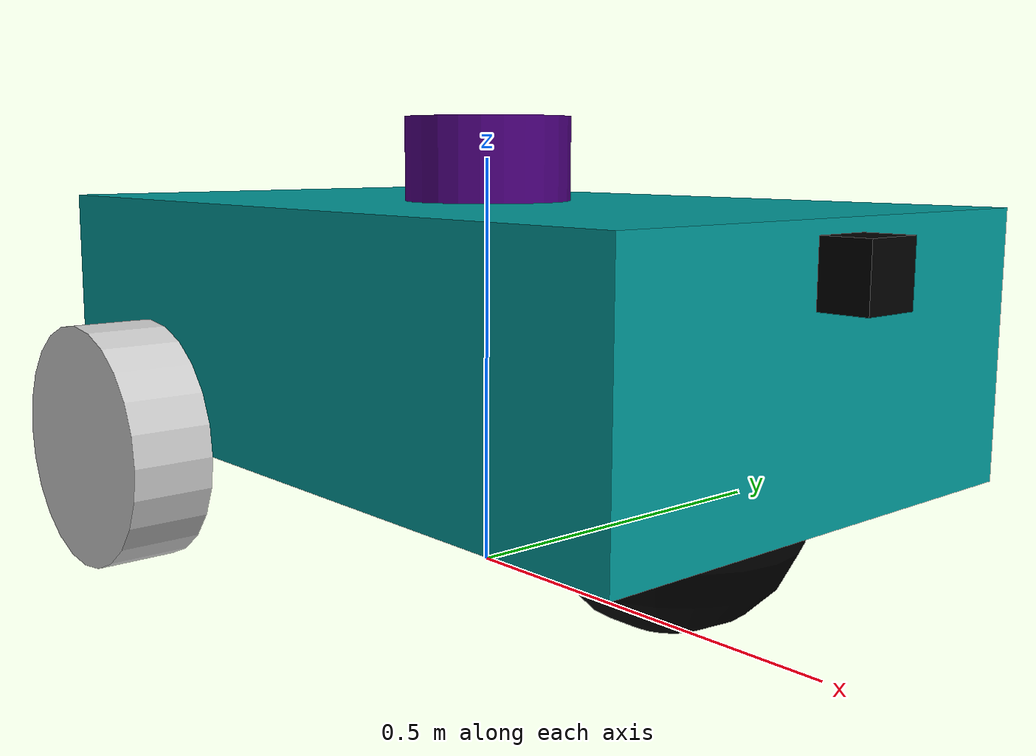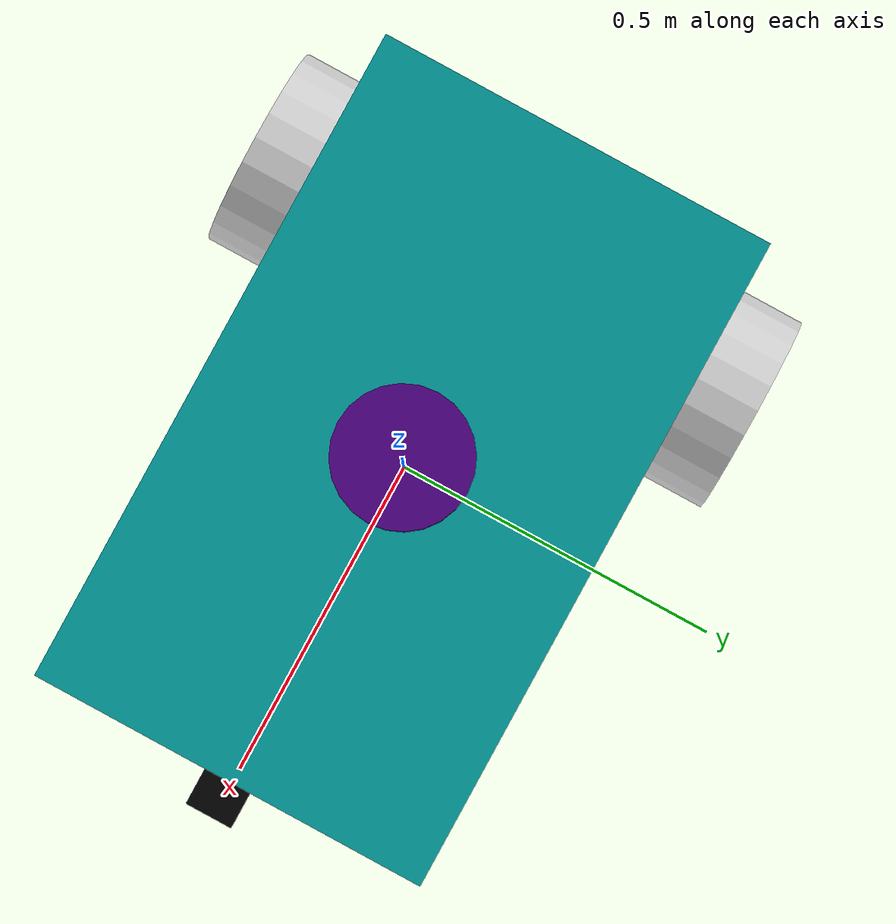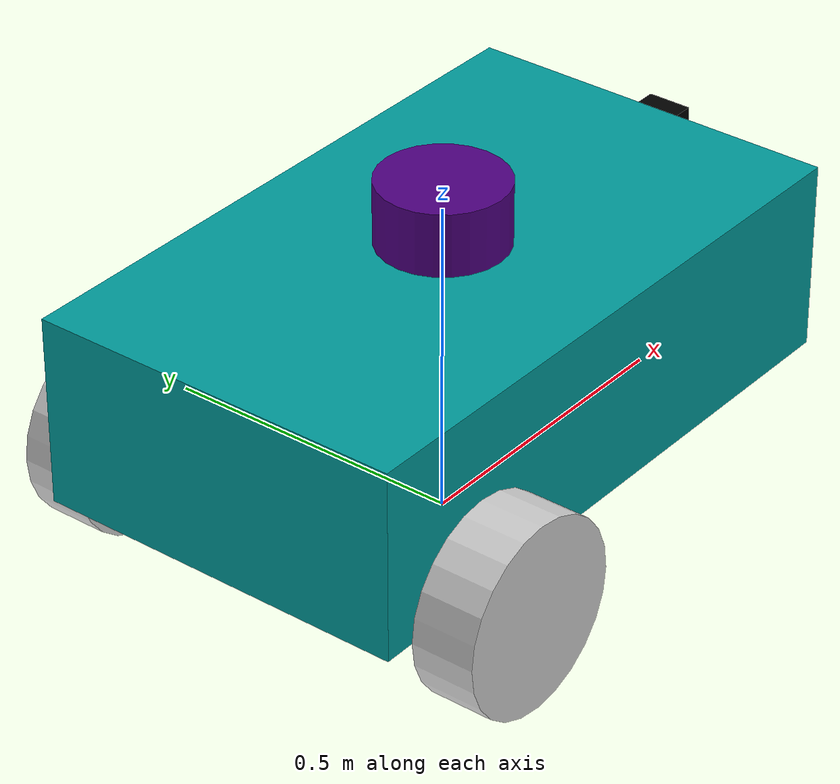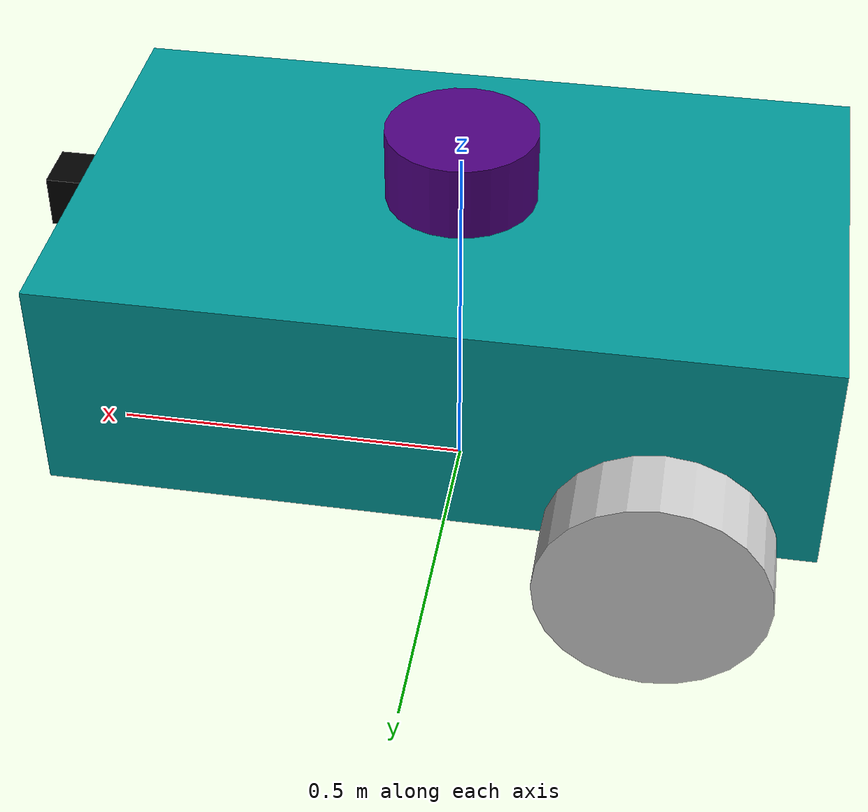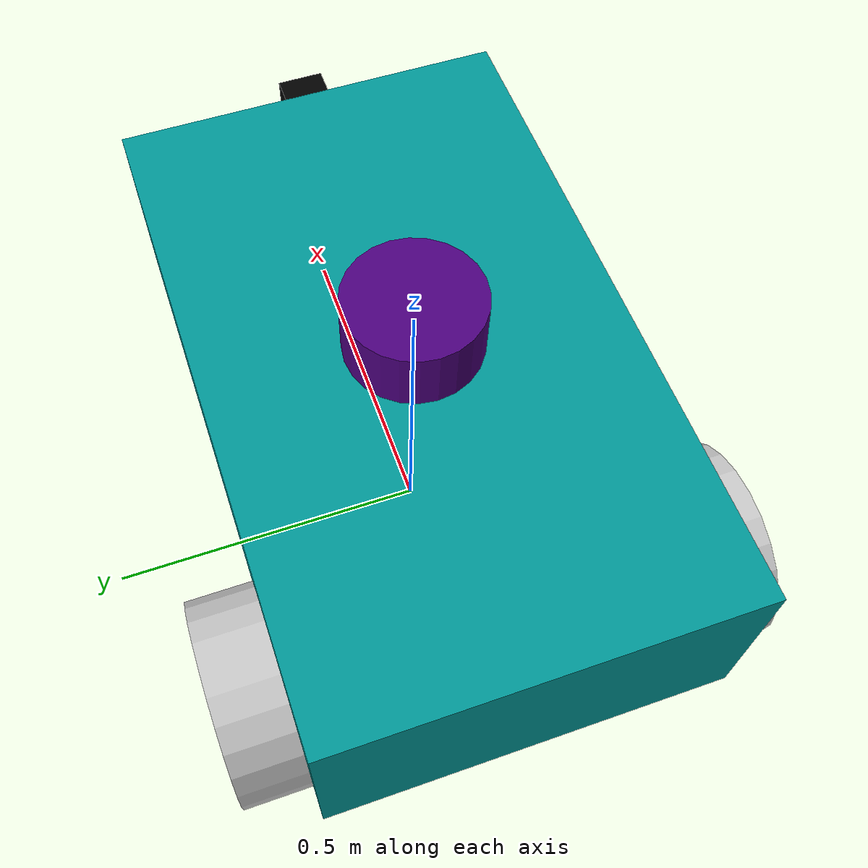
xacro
<?xml version="1.0"?>
<robot name="differential_drive_robot" xmlns:xacro="http://www.ros.org/wiki/xacro">

  <!-- Mathematical constant -->
  <xacro:property name="pi_const" value="3.14159265"/>

  <!-- Robot body dimensions -->
  <!-- Length of robot chassis (X axis) -->
  <xacro:property name="chassis_length" value="1.0"/>

  <!-- Height of robot chassis (Z axis) -->
  <xacro:property name="chassis_height" value="0.3"/>

  <!-- Width of robot chassis (Y axis) -->
  <xacro:property name="chassis_width" value="0.6"/>

  <!-- Wheel & caster geometry -->
  <!-- Radius of wheels and caster -->
  <xacro:property name="wheel_radius" value="0.15"/>

  <!-- Thickness of wheel -->
  <xacro:property name="wheel_width" value="0.1"/>

  <!-- Precomputed offsets -->
  <!-- Z offset of chassis center from base_footprint -->
  <xacro:property name="chassis_z_offset" value="${chassis_height/2 + wheel_radius}"/>

  <!-- X offset of rear wheels from chassis center -->
  <xacro:property name="rear_wheel_x_offset" value="${2 * wheel_radius}"/>

  <!-- X offset of caster wheel from chassis center -->
  <xacro:property name="caster_x_offset" value="${2 * wheel_radius}"/>

  <!-- Y offset of wheels from chassis center -->
  <xacro:property name="wheel_y_offset" value="${chassis_width/2 + wheel_width/2}"/>

  <!-- Material densities -->
  <xacro:property name="chassis_density" value="2710.0"/>
  <xacro:property name="wheel_density" value="2710.0"/>
  <xacro:property name="caster_density" value="2710.0"/>

  <!-- Mass calculations -->
  <xacro:property name="chassis_mass"
                  value="${chassis_density * chassis_length * chassis_height * chassis_width}"/>

  <xacro:property name="wheel_mass"
                  value="${wheel_density * pi_const * wheel_radius * wheel_radius * wheel_width}"/>

  <xacro:property name="caster_mass"
                  value="${caster_density * (4.0/3.0) * pi_const * wheel_radius * wheel_radius * wheel_radius}"/>

  <!-- Inertia calculations -->
  <xacro:property name="chassis_inertia_x"
                  value="${(1.0/12.0) * chassis_mass * (chassis_height*chassis_height + chassis_width*chassis_width)}"/>

  <xacro:property name="chassis_inertia_y"
                  value="${(1.0/12.0) * chassis_mass * (chassis_length*chassis_length + chassis_width*chassis_width)}"/>

  <xacro:property name="chassis_inertia_z"
                  value="${(1.0/12.0) * chassis_mass * (chassis_length*chassis_length + chassis_height*chassis_height)}"/>

  <xacro:property name="wheel_inertia_z" value="${0.5 * wheel_mass * wheel_radius * wheel_radius}"/>
  <xacro:property name="wheel_inertia_xy"
                  value="${(1.0/12.0) * wheel_mass * (3.0 * wheel_radius * wheel_radius + wheel_width * wheel_width)}"/>

  <xacro:property name="caster_inertia"
                  value="${(2.0/5.0) * caster_mass * wheel_radius * wheel_radius}"/>

  <!-- Inertia macros -->
  <xacro:macro name="chassis_inertia">
    <inertial>
      <origin xyz="0 0 ${chassis_z_offset}" rpy="0 0 0"/>
      <mass value="${chassis_mass}"/>
      <inertia ixx="${chassis_inertia_x}" ixy="0" ixz="0"
               iyy="${chassis_inertia_y}" iyz="0"
               izz="${chassis_inertia_z}"/>
    </inertial>
  </xacro:macro>

  <xacro:macro name="wheel_inertia">
    <inertial>
      <origin xyz="0 0 0" rpy="1.570795 0 0"/>
      <mass value="${wheel_mass}"/>
      <inertia ixx="${wheel_inertia_xy}" ixy="0" ixz="0"
               iyy="${wheel_inertia_xy}" iyz="0"
               izz="${wheel_inertia_z}"/>
    </inertial>
  </xacro:macro>

  <xacro:macro name="caster_inertia">
    <inertial>
      <origin xyz="0 0 0" rpy="0 0 0"/>
      <mass value="${caster_mass}"/>
      <inertia ixx="${caster_inertia}" ixy="0" ixz="0"
               iyy="${caster_inertia}" iyz="0"
               izz="${caster_inertia}"/>
    </inertial>
  </xacro:macro>

  <!-- Gazebo-specific params -->
  <xacro:include filename="$(find maze_robot)/urdf/robot.gazebo"/>

  <!-- Base footprint -->

<link name="base_link"/>

  <link name="base_footprint"/>

  <joint name="base_link_to_footprint" type="fixed">
    <parent link="base_link"/>
    <child link="base_footprint"/>
    <origin xyz="0 0 0" rpy="0 0 0"/>
  </joint>

  <joint name="base_to_chassis" type="fixed">
    <parent link="base_link"/>
    <child link="body_link"/>
    <origin xyz="0 0 0" rpy="0 0 0"/>
  </joint>

  <!-- Chassis link -->
  <link name="body_link">
    <visual>
      <origin xyz="0 0 ${chassis_z_offset}" rpy="0 0 0"/>
      <geometry>
        <box size="${chassis_length} ${chassis_width} ${chassis_height}"/>
      </geometry>
      <material name="chassis_blue">
        <color rgba="0 0.6 0.6 1"/>
      </material>
    </visual>

    <collision>
      <origin xyz="0 0 ${chassis_z_offset}" rpy="0 0 0"/>
      <geometry>
        <box size="${chassis_length} ${chassis_width} ${chassis_height}"/>
      </geometry>
    </collision>

    <xacro:chassis_inertia/>
  </link>

<!-- LiDAR joint -->
<joint name="lidar_joint" type="fixed">
  <!-- Mount LiDAR on top of the chassis -->
  <origin xyz="0 0 ${chassis_z_offset + wheel_radius}" rpy="0 0 0"/>
  <parent link="body_link"/>
  <child link="lidar_link"/>
</joint>

<!-- LiDAR link -->
<link name="lidar_link">

  <visual>
    <origin xyz="0 0 0.05" rpy="0 0 0"/>
    <geometry>
      <cylinder length="0.1" radius="0.1"/>
    </geometry>
    <material name="lidar_purple">
      <color rgba="0.3 0 0.5 1"/>
    </material>
  </visual>

  <collision>
    <origin xyz="0 0 0.05" rpy="0 0 0"/>
    <geometry>
      <cylinder length="0.1" radius="0.1"/>
    </geometry>
  </collision>

  <inertial>
    <!-- Very small mass to avoid affecting dynamics -->
    <mass value="1e-6"/>
    <origin xyz="0 0 0" rpy="0 0 0"/>
    <inertia
      ixx="1e-6" ixy="0" ixz="0"
      iyy="1e-6" iyz="0"
      izz="1e-6"/>
  </inertial>

</link>

  <!-- Camera sensor -->
  <joint name="camera_joint" type="fixed">
    <parent link="body_link"/>
    <child link="camera_link"/>
    <origin xyz="0.52 0 0.4" rpy="0 0 0"/>
  </joint>

  <link name="camera_link">
    <visual>
      <geometry>
        <box size="0.07 0.07 0.07"/>
      </geometry>
      <material name="camera_blue">
        <color rgba="0 0 0 1"/>
      </material>
    </visual>
  </link>

  <!-- Left wheel -->
  <joint name="left_wheel_joint" type="continuous">
    <parent link="body_link"/>
    <child link="left_wheel_link"/>
    <origin xyz="${-rear_wheel_x_offset} ${-wheel_y_offset} ${wheel_radius}" rpy="0 0 0"/>
    <axis xyz="0 1 0"/>
    <limit effort="50000" velocity="10"/>
    <dynamics damping="1.0" friction="1.0"/>
  </joint>

  <link name="left_wheel_link">
    <visual>
      <origin xyz="0 0 0" rpy="1.570795 0 0"/>
      <geometry>
        <cylinder radius="${wheel_radius}" length="${wheel_width}"/>
      </geometry>
      <material name="wheel_grey">
        <color rgba="0.8 0.8 0.8 1"/>
      </material>
    </visual>

    <collision>
      <origin xyz="0 0 0" rpy="1.570795 0 0"/>
      <geometry>
        <cylinder radius="${wheel_radius}" length="${wheel_width}"/>
      </geometry>
    </collision>

    <xacro:wheel_inertia/>
  </link>

  <!-- Right wheel -->
  <joint name="right_wheel_joint" type="continuous">
    <parent link="body_link"/>
    <child link="right_wheel_link"/>
    <origin xyz="${-rear_wheel_x_offset} ${wheel_y_offset} ${wheel_radius}" rpy="0 0 0"/>
    <axis xyz="0 1 0"/>
    <limit effort="50000" velocity="10"/>
    <dynamics damping="1.0" friction="1.0"/>
  </joint>

  <link name="right_wheel_link">
    <visual>
      <origin xyz="0 0 0" rpy="1.570795 0 0"/>
      <geometry>
        <cylinder radius="${wheel_radius}" length="${wheel_width}"/>
      </geometry>
      <material name="wheel_grey">
        <color rgba="0.8 0.8 0.8 1"/>
      </material>
    </visual>

    <collision>
      <origin xyz="0 0 0" rpy="1.570795 0 0"/>
      <geometry>
        <cylinder radius="${wheel_radius}" length="${wheel_width}"/>
      </geometry>
    </collision>

    <xacro:wheel_inertia/>
  </link>

  <!-- Caster wheel -->
  <joint name="caster_joint" type="fixed">
    <parent link="body_link"/>
    <child link="caster_link"/>
    <origin xyz="${caster_x_offset} 0 ${wheel_radius}" rpy="0 0 0"/>
  </joint>

  <link name="caster_link">
    <visual>
      <geometry>
        <sphere radius="${wheel_radius}"/>
      </geometry>
      <material name="caster_black">
        <color rgba="0 0 0 1"/>
      </material>
    </visual>

    <collision>
      <geometry>
        <sphere radius="${wheel_radius}"/>
      </geometry>
    </collision>

    <xacro:caster_inertia/>
  </link>

</robot>
